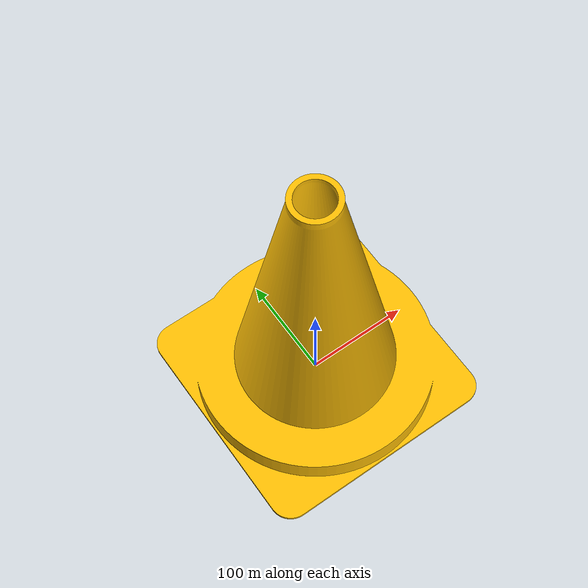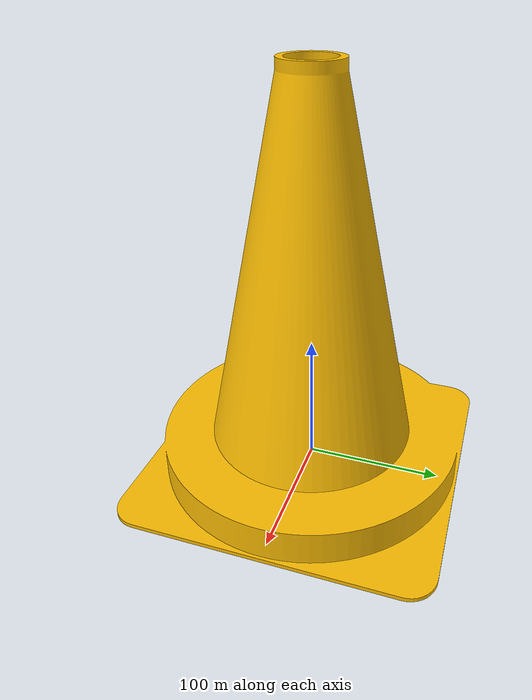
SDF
<?xml version='1.0'?>
<sdf version="1.4">
  <model name="cone">
    <static>true</static>
    <pose>0 0 0 0 0 0</pose>
    <link name="link">
      <inertial>
        <pose>0 0 0.1625 0 0 0</pose>
        <mass>0.45</mass>
        <inertia>
          <ixx>0.007883498</ixx>
          <ixy>0.0</ixy>
          <ixz>0.0</ixz>
          <iyy>0.007883498</iyy>
          <iyz>0.0</iyz>
          <izz>0.000107315</izz>
        </inertia>
      </inertial>
      <collision name="collision">
        <pose>0 0 0.1625 0 0 0</pose>
        <geometry>
          <cylinder>
            <radius>0.05075</radius>
            <length>0.325</length>
          </cylinder>
        </geometry>
      </collision>
      <visual name="visual">
        <geometry>
          <mesh>
            <uri>model://cone/cone.stl</uri>
          </mesh>
        </geometry>
        <material>
          <ambient>1 0 0 1</ambient>
          <diffuse>1 0.75 0.01 1</diffuse>
          <specular>0.1 0.1 0.1 1</specular>
          <emissive>0 0 0 0</emissive>
        </material>
      </visual>
    </link>
  </model>
</sdf>
